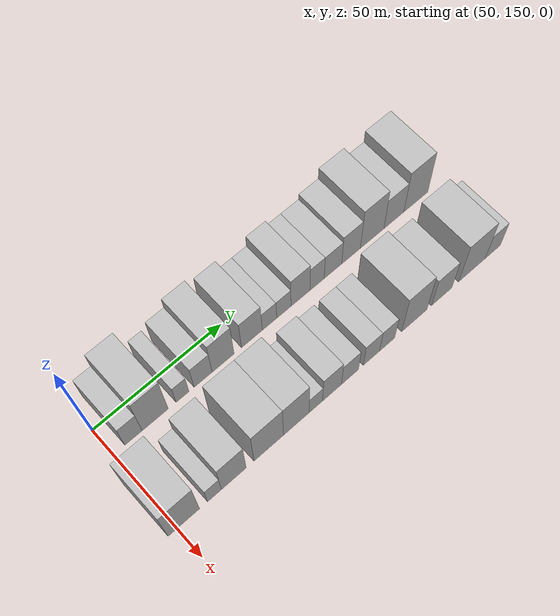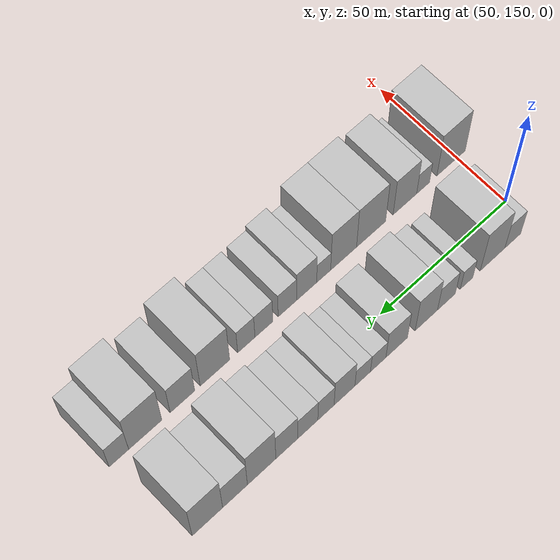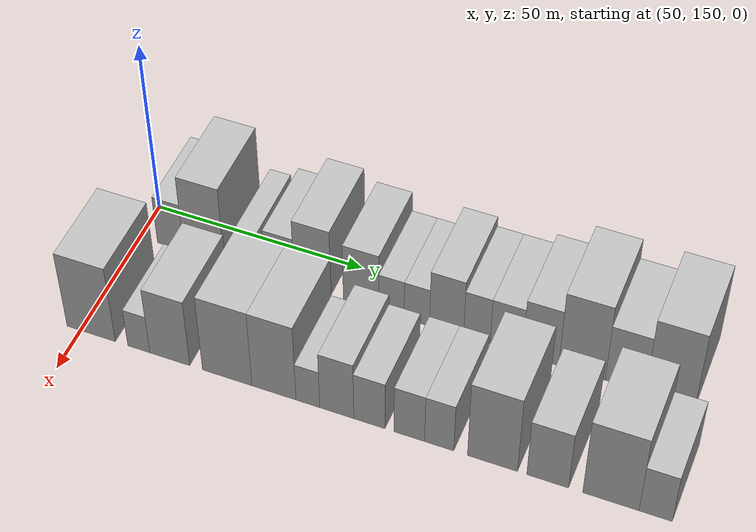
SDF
<sdf version="1.6">
 <world name="default">
  <model name="building_40">
   <static>1</static>
   <pose>50.0000 157.5673 0 0.000000 0.000000 0.000000</pose>
   <link name="link">
    <pose>0 0 7.50 0 0 0</pose>
    <collision name="collision"><geometry><box><size>20.0000 6.5049 15.0000</size></box></geometry></collision>
    <visual name="visual">
     <cast_shadows>0</cast_shadows>
     <geometry><box><size>20.0000 6.5049 15.0000</size></box></geometry>
     <material>
      <script>
       <uri>model://HANNAS_wall/materials/scripts</uri>
       <uri>model://HANNAS_wall/materials/textures</uri>
       <name>vrc/HANNAS_wall</name>
      </script>
     </material>
    </visual>
   </link>
  </model>
  <model name="building_41">
   <static>1</static>
   <pose>50.0000 165.8030 0 0.000000 0.000000 0.000000</pose>
   <link name="link">
    <pose>0 0 12.00 0 0 0</pose>
    <collision name="collision"><geometry><box><size>20.0000 9.9665 24.0000</size></box></geometry></collision>
    <visual name="visual">
     <cast_shadows>0</cast_shadows>
     <geometry><box><size>20.0000 9.9665 24.0000</size></box></geometry>
     <material>
      <script>
       <uri>model://HANNAS_wall/materials/scripts</uri>
       <uri>model://HANNAS_wall/materials/textures</uri>
       <name>vrc/HANNAS_wall</name>
      </script>
     </material>
    </visual>
   </link>
  </model>
  <model name="building_42">
   <static>1</static>
   <pose>50.0000 176.2996 0 0.000000 0.000000 0.000000</pose>
   <link name="link">
    <pose>0 0 6.00 0 0 0</pose>
    <collision name="collision"><geometry><box><size>20.0000 5.0267 12.0000</size></box></geometry></collision>
    <visual name="visual">
     <cast_shadows>0</cast_shadows>
     <geometry><box><size>20.0000 5.0267 12.0000</size></box></geometry>
     <material>
      <script>
       <uri>model://HANNAS_wall/materials/scripts</uri>
       <uri>model://HANNAS_wall/materials/textures</uri>
       <name>vrc/HANNAS_wall</name>
      </script>
     </material>
    </visual>
   </link>
  </model>
  <model name="building_43">
   <static>1</static>
   <pose>50.0000 184.3478 0 0.000000 0.000000 0.000000</pose>
   <link name="link">
    <pose>0 0 7.50 0 0 0</pose>
    <collision name="collision"><geometry><box><size>20.0000 7.0698 15.0000</size></box></geometry></collision>
    <visual name="visual">
     <cast_shadows>0</cast_shadows>
     <geometry><box><size>20.0000 7.0698 15.0000</size></box></geometry>
     <material>
      <script>
       <uri>model://HANNAS_wall/materials/scripts</uri>
       <uri>model://HANNAS_wall/materials/textures</uri>
       <name>vrc/HANNAS_wall</name>
      </script>
     </material>
    </visual>
   </link>
  </model>
  <model name="building_44">
   <static>1</static>
   <pose>50.0000 192.2530 0 0.000000 0.000000 0.000000</pose>
   <link name="link">
    <pose>0 0 10.50 0 0 0</pose>
    <collision name="collision"><geometry><box><size>20.0000 8.7406 21.0000</size></box></geometry></collision>
    <visual name="visual">
     <cast_shadows>0</cast_shadows>
     <geometry><box><size>20.0000 8.7406 21.0000</size></box></geometry>
     <material>
      <script>
       <uri>model://HANNAS_wall/materials/scripts</uri>
       <uri>model://HANNAS_wall/materials/textures</uri>
       <name>vrc/HANNAS_wall</name>
      </script>
     </material>
    </visual>
   </link>
  </model>
  <model name="building_45">
   <static>1</static>
   <pose>50.0000 203.8163 0 0.000000 0.000000 0.000000</pose>
   <link name="link">
    <pose>0 0 9.00 0 0 0</pose>
    <collision name="collision"><geometry><box><size>20.0000 8.3859 18.0000</size></box></geometry></collision>
    <visual name="visual">
     <cast_shadows>0</cast_shadows>
     <geometry><box><size>20.0000 8.3859 18.0000</size></box></geometry>
     <material>
      <script>
       <uri>model://HANNAS_wall/materials/scripts</uri>
       <uri>model://HANNAS_wall/materials/textures</uri>
       <name>vrc/HANNAS_wall</name>
      </script>
     </material>
    </visual>
   </link>
  </model>
  <model name="building_46">
   <static>1</static>
   <pose>50.0000 210.9679 0 0.000000 0.000000 0.000000</pose>
   <link name="link">
    <pose>0 0 6.00 0 0 0</pose>
    <collision name="collision"><geometry><box><size>20.0000 5.9173 12.0000</size></box></geometry></collision>
    <visual name="visual">
     <cast_shadows>0</cast_shadows>
     <geometry><box><size>20.0000 5.9173 12.0000</size></box></geometry>
     <material>
      <script>
       <uri>model://HANNAS_wall/materials/scripts</uri>
       <uri>model://HANNAS_wall/materials/textures</uri>
       <name>vrc/HANNAS_wall</name>
      </script>
     </material>
    </visual>
   </link>
  </model>
  <model name="building_47">
   <static>1</static>
   <pose>50.0000 216.8930 0 0.000000 0.000000 0.000000</pose>
   <link name="link">
    <pose>0 0 6.00 0 0 0</pose>
    <collision name="collision"><geometry><box><size>20.0000 5.9330 12.0000</size></box></geometry></collision>
    <visual name="visual">
     <cast_shadows>0</cast_shadows>
     <geometry><box><size>20.0000 5.9330 12.0000</size></box></geometry>
     <material>
      <script>
       <uri>model://HANNAS_wall/materials/scripts</uri>
       <uri>model://HANNAS_wall/materials/textures</uri>
       <name>vrc/HANNAS_wall</name>
      </script>
     </material>
    </visual>
   </link>
  </model>
  <model name="building_48">
   <static>1</static>
   <pose>50.0000 223.8020 0 0.000000 0.000000 0.000000</pose>
   <link name="link">
    <pose>0 0 9.00 0 0 0</pose>
    <collision name="collision"><geometry><box><size>20.0000 7.8851 18.0000</size></box></geometry></collision>
    <visual name="visual">
     <cast_shadows>0</cast_shadows>
     <geometry><box><size>20.0000 7.8851 18.0000</size></box></geometry>
     <material>
      <script>
       <uri>model://HANNAS_wall/materials/scripts</uri>
       <uri>model://HANNAS_wall/materials/textures</uri>
       <name>vrc/HANNAS_wall</name>
      </script>
     </material>
    </visual>
   </link>
  </model>
  <model name="building_49">
   <static>1</static>
   <pose>50.0000 230.7724 0 0.000000 0.000000 0.000000</pose>
   <link name="link">
    <pose>0 0 7.50 0 0 0</pose>
    <collision name="collision"><geometry><box><size>20.0000 6.0558 15.0000</size></box></geometry></collision>
    <visual name="visual">
     <cast_shadows>0</cast_shadows>
     <geometry><box><size>20.0000 6.0558 15.0000</size></box></geometry>
     <material>
      <script>
       <uri>model://HANNAS_wall/materials/scripts</uri>
       <uri>model://HANNAS_wall/materials/textures</uri>
       <name>vrc/HANNAS_wall</name>
      </script>
     </material>
    </visual>
   </link>
  </model>
  <model name="building_50">
   <static>1</static>
   <pose>50.0000 237.5136 0 0.000000 0.000000 0.000000</pose>
   <link name="link">
    <pose>0 0 7.50 0 0 0</pose>
    <collision name="collision"><geometry><box><size>20.0000 7.4265 15.0000</size></box></geometry></collision>
    <visual name="visual">
     <cast_shadows>0</cast_shadows>
     <geometry><box><size>20.0000 7.4265 15.0000</size></box></geometry>
     <material>
      <script>
       <uri>model://HANNAS_wall/materials/scripts</uri>
       <uri>model://HANNAS_wall/materials/textures</uri>
       <name>vrc/HANNAS_wall</name>
      </script>
     </material>
    </visual>
   </link>
  </model>
  <model name="building_51">
   <static>1</static>
   <pose>50.0000 245.2830 0 0.000000 0.000000 0.000000</pose>
   <link name="link">
    <pose>0 0 9.00 0 0 0</pose>
    <collision name="collision"><geometry><box><size>20.0000 8.1123 18.0000</size></box></geometry></collision>
    <visual name="visual">
     <cast_shadows>0</cast_shadows>
     <geometry><box><size>20.0000 8.1123 18.0000</size></box></geometry>
     <material>
      <script>
       <uri>model://HANNAS_wall/materials/scripts</uri>
       <uri>model://HANNAS_wall/materials/textures</uri>
       <name>vrc/HANNAS_wall</name>
      </script>
     </material>
    </visual>
   </link>
  </model>
  <model name="building_52">
   <static>1</static>
   <pose>50.0000 254.5072 0 0.000000 0.000000 0.000000</pose>
   <link name="link">
    <pose>0 0 12.00 0 0 0</pose>
    <collision name="collision"><geometry><box><size>20.0000 10.3362 24.0000</size></box></geometry></collision>
    <visual name="visual">
     <cast_shadows>0</cast_shadows>
     <geometry><box><size>20.0000 10.3362 24.0000</size></box></geometry>
     <material>
      <script>
       <uri>model://HANNAS_wall/materials/scripts</uri>
       <uri>model://HANNAS_wall/materials/textures</uri>
       <name>vrc/HANNAS_wall</name>
      </script>
     </material>
    </visual>
   </link>
  </model>
  <model name="building_53">
   <static>1</static>
   <pose>50.0000 264.1224 0 0.000000 0.000000 0.000000</pose>
   <link name="link">
    <pose>0 0 9.00 0 0 0</pose>
    <collision name="collision"><geometry><box><size>20.0000 8.8940 18.0000</size></box></geometry></collision>
    <visual name="visual">
     <cast_shadows>0</cast_shadows>
     <geometry><box><size>20.0000 8.8940 18.0000</size></box></geometry>
     <material>
      <script>
       <uri>model://HANNAS_wall/materials/scripts</uri>
       <uri>model://HANNAS_wall/materials/textures</uri>
       <name>vrc/HANNAS_wall</name>
      </script>
     </material>
    </visual>
   </link>
  </model>
  <model name="building_54">
   <static>1</static>
   <pose>50.0000 273.9861 0 0.000000 0.000000 0.000000</pose>
   <link name="link">
    <pose>0 0 12.00 0 0 0</pose>
    <collision name="collision"><geometry><box><size>20.0000 10.8333 24.0000</size></box></geometry></collision>
    <visual name="visual">
     <cast_shadows>0</cast_shadows>
     <geometry><box><size>20.0000 10.8333 24.0000</size></box></geometry>
     <material>
      <script>
       <uri>model://HANNAS_wall/materials/scripts</uri>
       <uri>model://HANNAS_wall/materials/textures</uri>
       <name>vrc/HANNAS_wall</name>
      </script>
     </material>
    </visual>
   </link>
  </model>
  <model name="building_103">
   <static>1</static>
   <pose>79.0000 152.5321 0 0.000000 0.000000 0.000000</pose>
   <link name="link">
    <pose>0 0 12.00 0 0 0</pose>
    <collision name="collision"><geometry><box><size>20.0000 11.6733 24.0000</size></box></geometry></collision>
    <visual name="visual">
     <cast_shadows>0</cast_shadows>
     <geometry><box><size>20.0000 11.6733 24.0000</size></box></geometry>
     <material>
      <script>
       <uri>model://HANNAS_wall/materials/scripts</uri>
       <uri>model://HANNAS_wall/materials/textures</uri>
       <name>vrc/HANNAS_wall</name>
      </script>
     </material>
    </visual>
   </link>
  </model>
  <model name="building_104">
   <static>1</static>
   <pose>79.0000 163.9935 0 0.000000 0.000000 0.000000</pose>
   <link name="link">
    <pose>0 0 6.00 0 0 0</pose>
    <collision name="collision"><geometry><box><size>20.0000 5.2494 12.0000</size></box></geometry></collision>
    <visual name="visual">
     <cast_shadows>0</cast_shadows>
     <geometry><box><size>20.0000 5.2494 12.0000</size></box></geometry>
     <material>
      <script>
       <uri>model://HANNAS_wall/materials/scripts</uri>
       <uri>model://HANNAS_wall/materials/textures</uri>
       <name>vrc/HANNAS_wall</name>
      </script>
     </material>
    </visual>
   </link>
  </model>
  <model name="building_105">
   <static>1</static>
   <pose>79.0000 171.3527 0 0.000000 0.000000 0.000000</pose>
   <link name="link">
    <pose>0 0 10.50 0 0 0</pose>
    <collision name="collision"><geometry><box><size>20.0000 9.4689 21.0000</size></box></geometry></collision>
    <visual name="visual">
     <cast_shadows>0</cast_shadows>
     <geometry><box><size>20.0000 9.4689 21.0000</size></box></geometry>
     <material>
      <script>
       <uri>model://HANNAS_wall/materials/scripts</uri>
       <uri>model://HANNAS_wall/materials/textures</uri>
       <name>vrc/HANNAS_wall</name>
      </script>
     </material>
    </visual>
   </link>
  </model>
  <model name="building_106">
   <static>1</static>
   <pose>79.0000 184.8543 0 0.000000 0.000000 0.000000</pose>
   <link name="link">
    <pose>0 0 12.00 0 0 0</pose>
    <collision name="collision"><geometry><box><size>20.0000 11.5344 24.0000</size></box></geometry></collision>
    <visual name="visual">
     <cast_shadows>0</cast_shadows>
     <geometry><box><size>20.0000 11.5344 24.0000</size></box></geometry>
     <material>
      <script>
       <uri>model://HANNAS_wall/materials/scripts</uri>
       <uri>model://HANNAS_wall/materials/textures</uri>
       <name>vrc/HANNAS_wall</name>
      </script>
     </material>
    </visual>
   </link>
  </model>
  <model name="building_107">
   <static>1</static>
   <pose>79.0000 195.6946 0 0.000000 0.000000 0.000000</pose>
   <link name="link">
    <pose>0 0 12.00 0 0 0</pose>
    <collision name="collision"><geometry><box><size>20.0000 10.1463 24.0000</size></box></geometry></collision>
    <visual name="visual">
     <cast_shadows>0</cast_shadows>
     <geometry><box><size>20.0000 10.1463 24.0000</size></box></geometry>
     <material>
      <script>
       <uri>model://HANNAS_wall/materials/scripts</uri>
       <uri>model://HANNAS_wall/materials/textures</uri>
       <name>vrc/HANNAS_wall</name>
      </script>
     </material>
    </visual>
   </link>
  </model>
  <model name="building_108">
   <static>1</static>
   <pose>79.0000 203.4761 0 0.000000 0.000000 0.000000</pose>
   <link name="link">
    <pose>0 0 6.00 0 0 0</pose>
    <collision name="collision"><geometry><box><size>20.0000 5.4166 12.0000</size></box></geometry></collision>
    <visual name="visual">
     <cast_shadows>0</cast_shadows>
     <geometry><box><size>20.0000 5.4166 12.0000</size></box></geometry>
     <material>
      <script>
       <uri>model://HANNAS_wall/materials/scripts</uri>
       <uri>model://HANNAS_wall/materials/textures</uri>
       <name>vrc/HANNAS_wall</name>
      </script>
     </material>
    </visual>
   </link>
  </model>
  <model name="building_109">
   <static>1</static>
   <pose>79.0000 210.0452 0 0.000000 0.000000 0.000000</pose>
   <link name="link">
    <pose>0 0 9.00 0 0 0</pose>
    <collision name="collision"><geometry><box><size>20.0000 7.7216 18.0000</size></box></geometry></collision>
    <visual name="visual">
     <cast_shadows>0</cast_shadows>
     <geometry><box><size>20.0000 7.7216 18.0000</size></box></geometry>
     <material>
      <script>
       <uri>model://HANNAS_wall/materials/scripts</uri>
       <uri>model://HANNAS_wall/materials/textures</uri>
       <name>vrc/HANNAS_wall</name>
      </script>
     </material>
    </visual>
   </link>
  </model>
  <model name="building_110">
   <static>1</static>
   <pose>79.0000 217.4243 0 0.000000 0.000000 0.000000</pose>
   <link name="link">
    <pose>0 0 7.50 0 0 0</pose>
    <collision name="collision"><geometry><box><size>20.0000 7.0367 15.0000</size></box></geometry></collision>
    <visual name="visual">
     <cast_shadows>0</cast_shadows>
     <geometry><box><size>20.0000 7.0367 15.0000</size></box></geometry>
     <material>
      <script>
       <uri>model://HANNAS_wall/materials/scripts</uri>
       <uri>model://HANNAS_wall/materials/textures</uri>
       <name>vrc/HANNAS_wall</name>
      </script>
     </material>
    </visual>
   </link>
  </model>
  <model name="building_111">
   <static>1</static>
   <pose>79.0000 226.3250 0 0.000000 0.000000 0.000000</pose>
   <link name="link">
    <pose>0 0 7.50 0 0 0</pose>
    <collision name="collision"><geometry><box><size>20.0000 6.7648 15.0000</size></box></geometry></collision>
    <visual name="visual">
     <cast_shadows>0</cast_shadows>
     <geometry><box><size>20.0000 6.7648 15.0000</size></box></geometry>
     <material>
      <script>
       <uri>model://HANNAS_wall/materials/scripts</uri>
       <uri>model://HANNAS_wall/materials/textures</uri>
       <name>vrc/HANNAS_wall</name>
      </script>
     </material>
    </visual>
   </link>
  </model>
  <model name="building_112">
   <static>1</static>
   <pose>79.0000 232.9367 0 0.000000 0.000000 0.000000</pose>
   <link name="link">
    <pose>0 0 7.50 0 0 0</pose>
    <collision name="collision"><geometry><box><size>20.0000 6.4586 15.0000</size></box></geometry></collision>
    <visual name="visual">
     <cast_shadows>0</cast_shadows>
     <geometry><box><size>20.0000 6.4586 15.0000</size></box></geometry>
     <material>
      <script>
       <uri>model://HANNAS_wall/materials/scripts</uri>
       <uri>model://HANNAS_wall/materials/textures</uri>
       <name>vrc/HANNAS_wall</name>
      </script>
     </material>
    </visual>
   </link>
  </model>
  <model name="building_113">
   <static>1</static>
   <pose>79.0000 244.6000 0 0.000000 0.000000 0.000000</pose>
   <link name="link">
    <pose>0 0 12.00 0 0 0</pose>
    <collision name="collision"><geometry><box><size>20.0000 10.8680 24.0000</size></box></geometry></collision>
    <visual name="visual">
     <cast_shadows>0</cast_shadows>
     <geometry><box><size>20.0000 10.8680 24.0000</size></box></geometry>
     <material>
      <script>
       <uri>model://HANNAS_wall/materials/scripts</uri>
       <uri>model://HANNAS_wall/materials/textures</uri>
       <name>vrc/HANNAS_wall</name>
      </script>
     </material>
    </visual>
   </link>
  </model>
  <model name="building_114">
   <static>1</static>
   <pose>79.0000 256.5031 0 0.000000 0.000000 0.000000</pose>
   <link name="link">
    <pose>0 0 9.00 0 0 0</pose>
    <collision name="collision"><geometry><box><size>20.0000 8.9382 18.0000</size></box></geometry></collision>
    <visual name="visual">
     <cast_shadows>0</cast_shadows>
     <geometry><box><size>20.0000 8.9382 18.0000</size></box></geometry>
     <material>
      <script>
       <uri>model://HANNAS_wall/materials/scripts</uri>
       <uri>model://HANNAS_wall/materials/textures</uri>
       <name>vrc/HANNAS_wall</name>
      </script>
     </material>
    </visual>
   </link>
  </model>
  <model name="building_115">
   <static>1</static>
   <pose>79.0000 269.9069 0 0.000000 0.000000 0.000000</pose>
   <link name="link">
    <pose>0 0 12.00 0 0 0</pose>
    <collision name="collision"><geometry><box><size>20.0000 11.8694 24.0000</size></box></geometry></collision>
    <visual name="visual">
     <cast_shadows>0</cast_shadows>
     <geometry><box><size>20.0000 11.8694 24.0000</size></box></geometry>
     <material>
      <script>
       <uri>model://HANNAS_wall/materials/scripts</uri>
       <uri>model://HANNAS_wall/materials/textures</uri>
       <name>vrc/HANNAS_wall</name>
      </script>
     </material>
    </visual>
   </link>
  </model>
  <model name="building_116">
   <static>1</static>
   <pose>79.0000 279.3136 0 0.000000 0.000000 0.000000</pose>
   <link name="link">
    <pose>0 0 7.50 0 0 0</pose>
    <collision name="collision"><geometry><box><size>20.0000 6.9438 15.0000</size></box></geometry></collision>
    <visual name="visual">
     <cast_shadows>0</cast_shadows>
     <geometry><box><size>20.0000 6.9438 15.0000</size></box></geometry>
     <material>
      <script>
       <uri>model://HANNAS_wall/materials/scripts</uri>
       <uri>model://HANNAS_wall/materials/textures</uri>
       <name>vrc/HANNAS_wall</name>
      </script>
     </material>
    </visual>
   </link>
  </model>
 </world>
</sdf>
